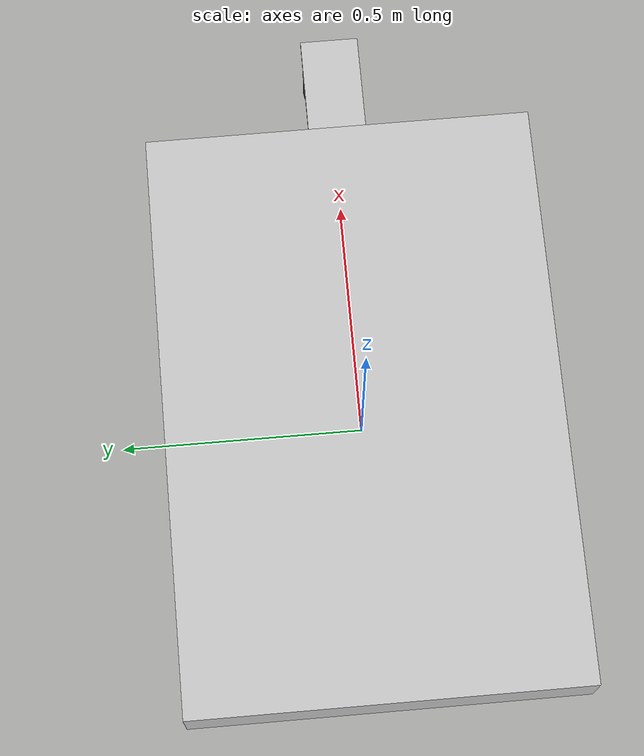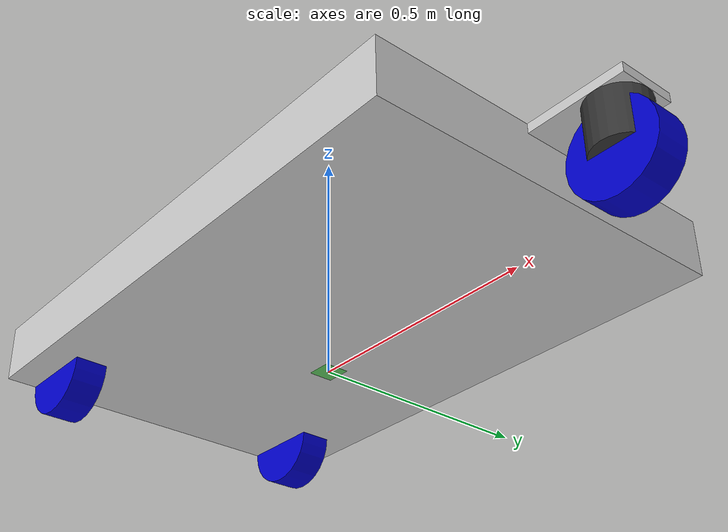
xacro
<?xml version="1.0"?>
<robot name="ackermann_steer_bot" xmlns:xacro="http://ros.org/wiki/xacro">
    <!-- Include all component files -->
    <xacro:include filename="$(find ackermann_steer_bot_description)/urdf/common_properties/materials.urdf.xacro" />
    <xacro:include filename="$(find ackermann_steer_bot_description)/urdf/ackermann_steer/ackermann_steer_base.urdf.xacro" />
    <xacro:include filename="$(find ackermann_steer_bot_description)/urdf/ackermann_steer/ackermann_steer_wheel.urdf.xacro" />
    <xacro:include filename="$(find ackermann_steer_bot_description)/urdf/gazebo/ackermann_steer_base_gazebo.urdf.xacro" />
</robot>

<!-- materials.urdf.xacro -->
<robot xmlns:xacro="http://ros.org/wiki/xacro">

    <!-- Put all the color definitions in a separate file -->

    <material name="Black">
        <color rgba="0.2 0.2 0.2 1.0"/>
    </material>

    <material name="TransparentBlack">
        <color rgba="0.2 0.2 0.2 0.8"/>
    </material>

    <material name="Orange">
        <color rgba="1.0  0.55 0.0 1.0"/>
    </material>

    <material name="Grey">
        <color rgba="0.7 0.7 0.7 1.0"/>
    </material>

    <material name="DarkGrey">
        <color rgba="0.3 0.3 0.3 1.0"/>
    </material>

    <material name="Red">
        <color rgba="0.8 0.0 0.0 1.0"/>
    </material>

    <material name="White">
        <color rgba="1.0 1.0 1.0 1.0"/>
    </material>

    <material name="OffWhite">
        <color rgba="0.8 0.8 0.8 1.0"/>
    </material>

    <material name="Blue">
        <color rgba="0.0 0.0 0.8 1.0"/>
    </material>

    <material name="Green">
        <color rgba="0.0 0.8 0.0 1.0"/>
    </material>

    <material name="TransparentGreen">
        <color rgba="0.0 0.8 0.0 0.5"/>
    </material>

</robot>

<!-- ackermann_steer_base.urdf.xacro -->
<robot name="base"
    xmlns:xacro="http://ros.org/wiki/xacro">

    <xacro:include filename="$(find ackermann_steer_bot_description)/urdf/common_properties/common_properties.urdf.xacro" />

    <!-- Define a number of dimensions using properties -->
    <xacro:property name="base_size_x" value="1.20" />
    <xacro:property name="base_size_y" value="0.8" />
    <xacro:property name="base_size_z" value="0.12" />
    <xacro:property name="wheel_length" value="0.07032" /> <!-- 0.06032 value for perfect fit.-->
    <xacro:property name="wheel_radius" value="0.09191" />
    <xacro:property name="wheel_offset_x" value="0.00" />
    <xacro:property name="wheel_offset_y" value="0.1" />
    <xacro:property name="PI" value="3.1415" />
    <!-- differential_drive_controller update rate -->
    <xacro:property name="update_rate" value="30" />
    <!--
        For more colors check the link below
        http://wiki.ros.org/simulator_gazebo/Tutorials/ListOfMaterials
    -->
    <xacro:property name="wheel_color" value="WoodPallet" />
    <xacro:property name="castor_wheel_color" value="Grass" />
    <xacro:property name="body_color" value="WoodFloor" />

    <xacro:macro name="wheel" params="suffix parent reflect color_rviz color_gazebo">
        <joint name="${parent}_${suffix}_wheel_joint" type="continuous">
            <axis xyz="0 0 ${-reflect}" />
            <limit effort="100" velocity="100"/>
            <safety_controller k_velocity="10" />
            <origin xyz="-${base_size_x/2 - wheel_radius - wheel_offset_x } ${reflect * (base_size_y/2 - wheel_offset_y)} -${base_size_z/2}" rpy="${reflect*PI/2} 0 0" />
            <parent link="${parent}_link"/>
            <child link="${parent}_${suffix}_wheel_link"/>
        </joint>
        <gazebo reference="${parent}_${suffix}_wheel_link">
            <material>Gazebo/${color_gazebo}</material>
        </gazebo>
        <link name="${parent}_${suffix}_wheel_link">
            <visual>
                <origin xyz="0 0 0" rpy="0 0 0" />
                <geometry>
                    <cylinder radius="${wheel_radius}" length="${wheel_length}"/>
                </geometry>
                <material name="${color_rviz}" />
            </visual>
            <collision>
                <origin xyz="0 0 0" rpy="0 0 0" />
                <geometry>
                    <cylinder radius="${wheel_radius}" length="${wheel_length}"/>
                </geometry>
                <surface>
                    <friction>
                    <ode>
                        <mu>0.998000</mu>
                        <mu2>0.998000</mu2>
                        <fdir1>0.000000 0.000000 0.000000</fdir1>
                        <slip1>0.000000</slip1>
                        <slip2>0.000000</slip2>
                    </ode>
                    </friction>
                </surface>
            </collision>
            <xacro:cylinder_inertial radius="${wheel_radius}" length="${wheel_length}" mass="5">
                <origin xyz="0 0 0" />
            </xacro:cylinder_inertial>
        </link>
    </xacro:macro>

    <!-- The base xacro macro -->
    <xacro:macro name="base" params="name color_rviz color_gazebo">
        <gazebo reference="${name}_link">
            <material>Gazebo/${color_gazebo}</material>
        </gazebo>
        <link name="${name}_link">
            <visual>
                <origin xyz="0 0 0" rpy="0 0 0" />
                <geometry>
                    <box size="${base_size_x} ${base_size_y} ${base_size_z}" />
                </geometry>
                <material name="${color_rviz}" />
            </visual>
            <collision>
                <origin xyz="0 0 0" rpy="0 0 0" />
                <geometry>
                    <box size="${base_size_x} ${base_size_y} ${base_size_z}" />
                </geometry>
            </collision>
            <xacro:box_inertial x="${base_size_x}" y="${base_size_y}" z="${base_size_z}" mass="15">
                <origin xyz="0 0 0" />
            </xacro:box_inertial>
        </link>
    </xacro:macro>

    <link name="base_footprint">
        <visual>
            <origin xyz="0 0 0" rpy="0 0 0" />
            <geometry>
                <box size="0.05 0.05 0.001" />
            </geometry>
            <material name="TransparentGreen" />
        </visual>
    </link>

    <joint name="base_joint" type="fixed">
        <origin xyz="0 0 ${base_size_z/2 + wheel_radius}" rpy="0 0 0" />
        <parent link="base_footprint"/>
        <child link="base_link" />
    </joint>

    <!-- Add base_link -->
    <xacro:base name="base" color_rviz="OffWhite" color_gazebo="${body_color}" />
    <!-- Add the drive wheels -->
    <xacro:wheel parent="base" suffix="l" reflect="1" color_rviz="Blue" color_gazebo="${wheel_color}" />
    <xacro:wheel parent="base" suffix="r" reflect="-1" color_rviz="Blue" color_gazebo="${wheel_color}" />

</robot>

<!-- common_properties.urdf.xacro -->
<!--
  Various useful properties such as constants and materials
 -->
<robot name="xacro_properties" xmlns:xacro="http://ros.org/wiki/xacro">
  <!-- #################### RViz materials #################### -->
  <xacro:property name="material_white">
    <material name="white">
      <color rgba="1 1 1 1"/>
    </material>
  </xacro:property>
  <xacro:property name="material_yellow">
    <material name="yellow">
      <color rgba="${255/255} ${226/255} ${0/255} 1"/>
    </material>
  </xacro:property>
  <xacro:property name="material_almost_white">
    <material name="almost_white">
      <color rgba="0.9 0.9 0.9 1" />
    </material>
  </xacro:property>
  <xacro:property name="material_grey">
    <material name="grey">
      <color rgba="0.5 0.5 0.5 1"/>
    </material>
  </xacro:property>
  <xacro:property name="material_light_grey">
    <material name="light_grey">
      <color rgba="0.6 0.6 0.6 1"/>
    </material>
  </xacro:property>
  <xacro:property name="material_dark_grey">
    <material name="dark_grey">
      <color rgba="0.3 0.3 0.3 1"/>
    </material>
  </xacro:property>
  <xacro:property name="material_black">
    <material name="black">
      <color rgba="0.1 0.1 0.1 1"/>
    </material>
  </xacro:property>
  <xacro:property name="material_aluminum">
    <material name="aluminum">
      <color rgba="0.8 0.8 0.8 1" />
    </material>
  </xacro:property>
  <xacro:property name="material_silver">
    <material name="silver">
      <color rgba="0.79 0.82 0.93 1" />
    </material>
  </xacro:property>

  <xacro:property name="ppp" value="Black"/>

  <!-- #################### inertials with origin #################### -->
  <!-- see https://secure.wikimedia.org/wikipedia/en/wiki/List_of_moment_of_inertia_tensors -->
  <xacro:macro name="sphere_inertial" params="radius mass *origin">
    <inertial>
      <mass value="${mass}" />
      <xacro:insert_block name="origin" />
      <inertia ixx="${0.4 * mass * radius * radius}" ixy="0.0" ixz="0.0"
        iyy="${0.4 * mass * radius * radius}" iyz="0.0"
        izz="${0.4 * mass * radius * radius}" />
    </inertial>
  </xacro:macro>

  <xacro:macro name="cylinder_inertial" params="radius length mass *origin">
    <inertial>
      <mass value="${mass}" />
      <xacro:insert_block name="origin" />
      <inertia ixx="${0.0833333 * mass * (3 * radius * radius + length * length)}" ixy="0.0" ixz="0.0"
        iyy="${0.0833333 * mass * (3 * radius * radius + length * length)}" iyz="0.0"
        izz="${0.5 * mass * radius * radius}" />
    </inertial>
  </xacro:macro>

  <xacro:macro name="box_inertial" params="x y z mass *origin">
    <inertial>
      <mass value="${mass}" />
      <xacro:insert_block name="origin" />
      <inertia ixx="${0.0833333 * mass * (y*y + z*z)}" ixy="0.0" ixz="0.0"
        iyy="${0.0833333 * mass * (x*x + z*z)}" iyz="0.0"
        izz="${0.0833333 * mass * (x*x + y*y)}" />
    </inertial>
  </xacro:macro>
</robot>

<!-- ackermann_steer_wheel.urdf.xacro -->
<robot name="steer_wheel" xmlns:xacro="http://ros.org/wiki/xacro">

    <xacro:property name="fixed_size_x" value="0.2" />
    <xacro:property name="fixed_size_y" value="0.12" />
    <xacro:property name="fixed_size_z" value="0.02" />
    <xacro:property name="steer_link_radius" value="${fixed_size_y/2}" />
    <xacro:property name="steer_link_length" value="${base_size_z - fixed_size_z}" />
    <xacro:property name="wheel_color" value="WoodPallet" />
    <xacro:property name="castor_wheel_color" value="Grass" />
    <xacro:property name="body_color" value="WoodFloor" />

    <xacro:include filename="$(find ackermann_steer_bot_description)/urdf/common_properties/common_properties.urdf.xacro" />
    <!-- Fixed joint to hold steer and traction component.     -->
    <gazebo reference="steer_fixed_link">
        <material>Gazebo/${body_color}</material>
    </gazebo>
    <link name="steer_fixed_link">
        <visual>
            <origin xyz="0 0 0" rpy="0 0 0" />
            <geometry>
                <box size="${fixed_size_x} ${fixed_size_y} ${fixed_size_z}" />
            </geometry>
            <material name="OffWhite" />
        </visual>
        <collision>
            <origin xyz="0 0 0" rpy="0 0 0" />
            <geometry>
                <box size="${fixed_size_x} ${fixed_size_y} ${fixed_size_z}" />
            </geometry>
        </collision>
        <xacro:box_inertial x="${fixed_size_x}" y="${fixed_size_y}" z="${fixed_size_z}" mass="0.5">
            <origin xyz="0 0 0" />
        </xacro:box_inertial>
    </link>

    <joint name="steer_fixed_joint" type="fixed">
        <origin xyz="${base_size_x/2 + fixed_size_x/2} 0 ${base_size_z/2 - fixed_size_z/2}" rpy="0 0 0" />
        <parent link="base_link"/>
        <child link="steer_fixed_link" />
    </joint>

    <!-- Steer joint. -->
    <gazebo reference="steer_control_link">
        <material>Gazebo/Blue</material>
    </gazebo>
    <link name="steer_control_link">
        <visual>
            <origin xyz="0 0 0" rpy="0 0 0" />
            <geometry>
                <cylinder radius="${steer_link_radius}" length="${steer_link_length}"/>
            </geometry>
            <material name="${ppp}" />
        </visual>
        <collision>
            <origin xyz="0 0 0" rpy="0 0 0" />
            <geometry>
                <cylinder radius="${steer_link_radius}" length="${steer_link_length}"/>
            </geometry>
        </collision>
        <xacro:cylinder_inertial radius="${steer_link_radius}" length="${steer_link_length}" mass="5">
            <origin xyz="0 0 0" />
        </xacro:cylinder_inertial>
    </link>

    <joint name="steer_contol_joint" type="revolute">
        <origin xyz="${fixed_size_x/2 - steer_link_radius} 0 -${steer_link_length/2 + fixed_size_z/2}" rpy="0 0 0" />
        <parent link="steer_fixed_link"/>
        <child link="steer_control_link" />
        <limit lower="-${PI/2}" upper="${PI/2}" effort="10" velocity="3"/>
        <axis xyz="0 0 1"/>
    </joint>

    <transmission name="ackermann_steering_joint_transmission">
      <type>transmission_interface/SimpleTransmission</type>
      <joint name="steer_contol_joint">
        <hardwareInterface>PositionJointInterface</hardwareInterface>
      </joint>
      <actuator name="ackermann_steering_motor">
        <mechanicalReduction>1</mechanicalReduction>
      </actuator>
    </transmission>

    <!-- Traction Wheels -->
    <gazebo reference="traction_wheel_link">
        <material>Gazebo/${wheel_color}</material>
    </gazebo>
    <link name="traction_wheel_link">
        <visual>
            <origin xyz="0 0 0" rpy="0 0 0" />
            <geometry>
                <cylinder radius="${wheel_radius}" length="${wheel_length}"/>
            </geometry>
            <material name="Blue" />
        </visual>
        <collision>
            <origin xyz="0 0 0" rpy="0 0 0" />
            <geometry>
                <cylinder radius="${wheel_radius}" length="${wheel_length}"/>
            </geometry>
            <surface>
                <friction>
                <ode>
                    <mu>0.998000</mu>
                    <mu2>0.998000</mu2>
                    <fdir1>0.000000 0.000000 0.000000</fdir1>
                    <slip1>0.000000</slip1>
                    <slip2>0.000000</slip2>
                </ode>
                </friction>
            </surface>
        </collision>
        <xacro:cylinder_inertial radius="${wheel_radius}" length="${wheel_length}" mass="5">
            <origin xyz="0 0 0" />
        </xacro:cylinder_inertial>
    </link>

    <joint name="traction_wheel_joint" type="continuous">
        <origin xyz="0 0 -${steer_link_length/2}" rpy="-${PI/2} 0 0" />
        <parent link="steer_control_link"/>
        <child link="traction_wheel_link" />
        <axis xyz="0 0 1" />
        <limit effort="100" velocity="100"/>
        <safety_controller k_velocity="10" />
    </joint>

    <transmission name="ackermann_traction_joint_transmission">
      <type>transmission_interface/SimpleTransmission</type>
      <joint name="traction_wheel_joint">
        <hardwareInterface>VelocityJointInterface</hardwareInterface>
      </joint>
      <actuator name="ackermann_traction_motor">
        <mechanicalReduction>1</mechanicalReduction>
      </actuator>
    </transmission>

</robot>
